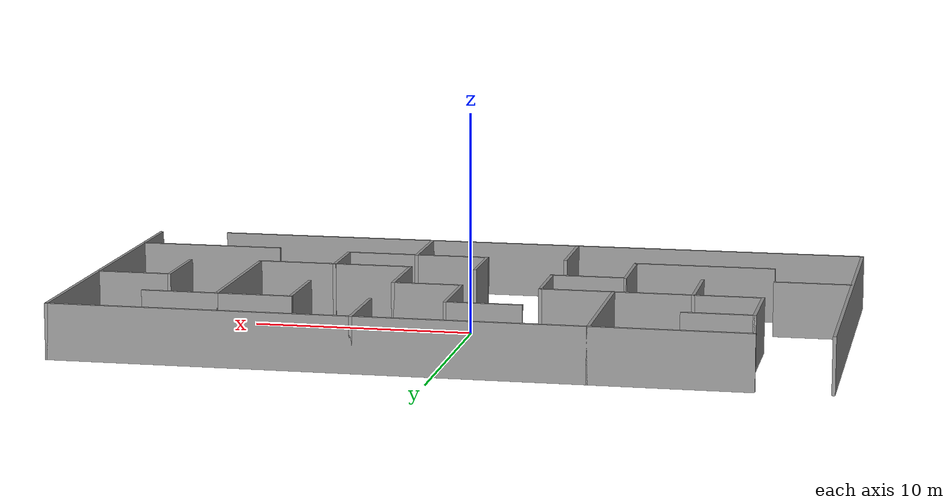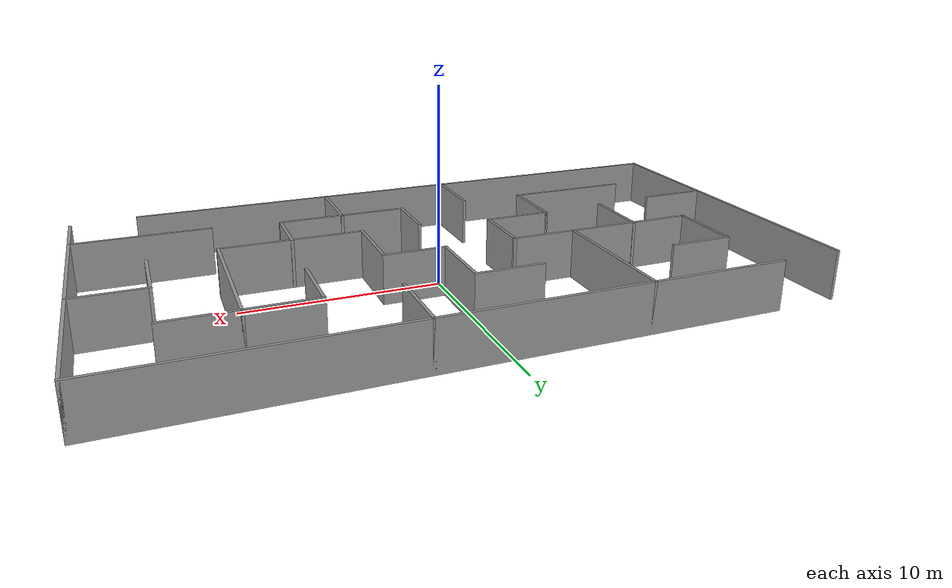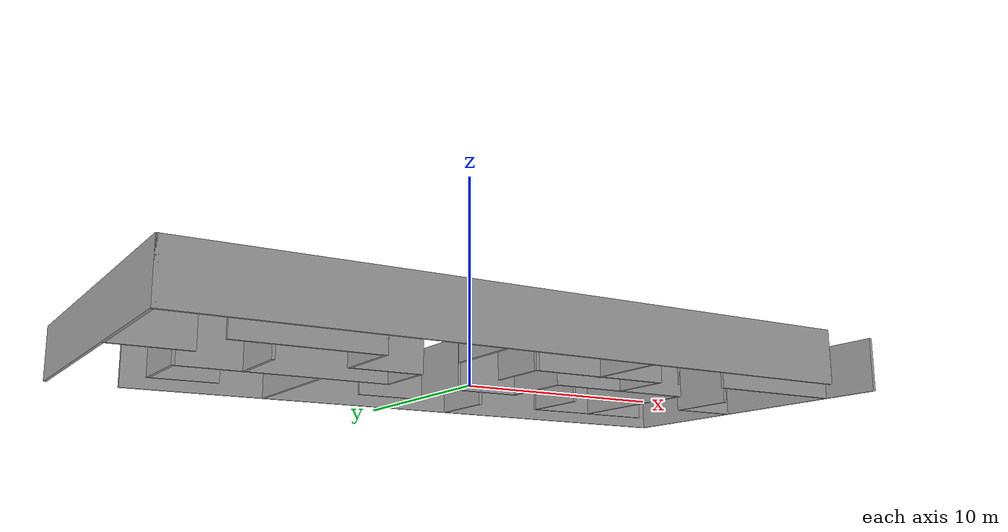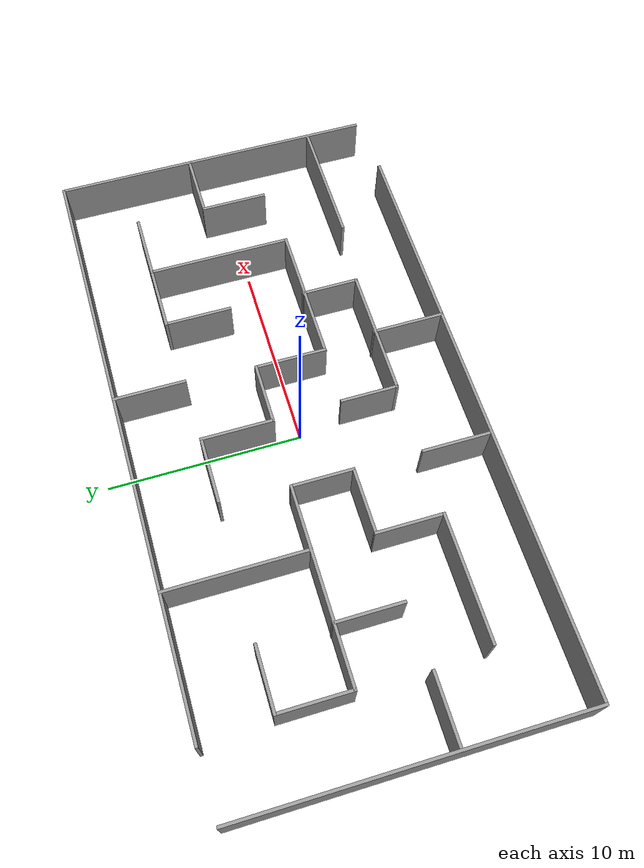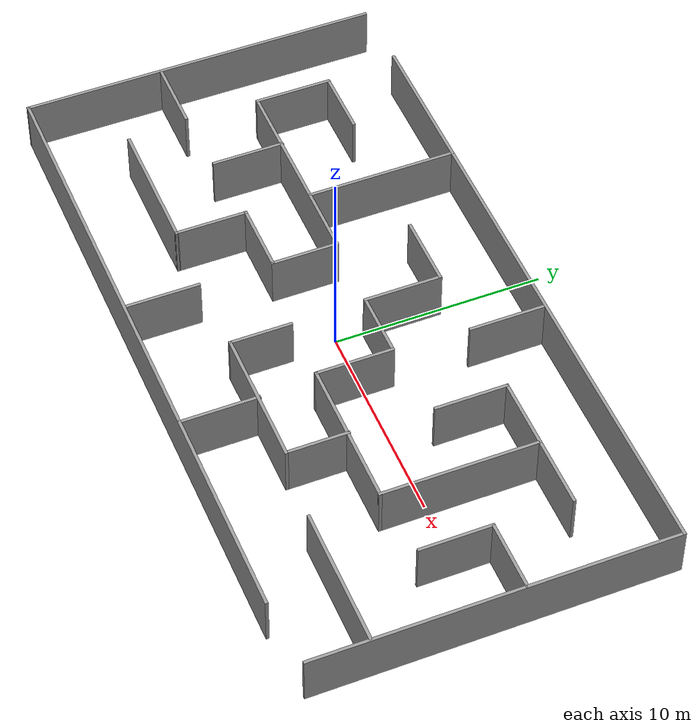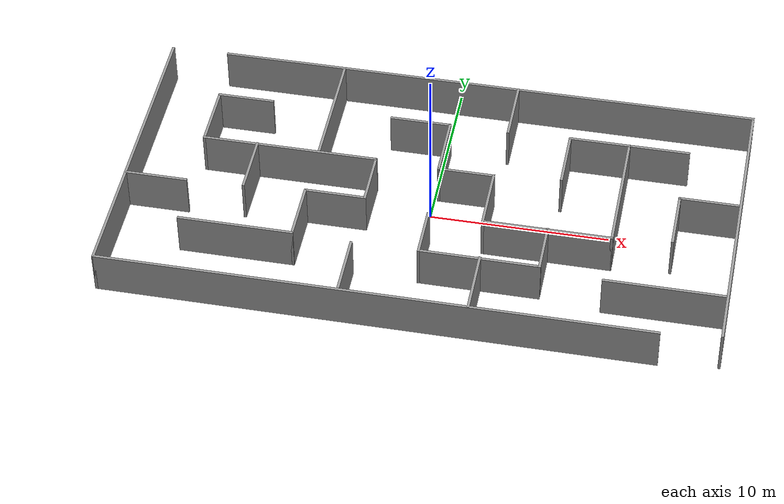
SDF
<?xml version='1.0'?>
<sdf version='1.7'>
  <model name='maze3'>
    <pose>0.067566 -0.037467 0 0 -0 0</pose>
    <link name='Wall_115'>
      <collision name='Wall_115_Collision'>
        <geometry>
          <box>
            <size>17.25 0.15 2.5</size>
          </box>
        </geometry>
        <pose>0 0 1.25 0 -0 0</pose>
      </collision>
      <visual name='Wall_115_Visual'>
        <pose>0 0 1.25 0 -0 0</pose>
        <geometry>
          <box>
            <size>17.25 0.15 2.5</size>
          </box>
        </geometry>
        <material>
          <script>
            <uri>file://media/materials/scripts/gazebo.material</uri>
            <name>Gazebo/Grey</name>
          </script>
          <ambient>1 1 1 1</ambient>
        </material>
        <meta>
          <layer>0</layer>
        </meta>
      </visual>
      <pose>-16.9493 -0.060341 0 0 -0 -1.5708</pose>
    </link>
    <link name='Wall_116'>
      <collision name='Wall_116_Collision'>
        <geometry>
          <box>
            <size>30.75 0.15 2.5</size>
          </box>
        </geometry>
        <pose>0 0 1.25 0 -0 0</pose>
      </collision>
      <visual name='Wall_116_Visual'>
        <pose>0 0 1.25 0 -0 0</pose>
        <geometry>
          <box>
            <size>30.75 0.15 2.5</size>
          </box>
        </geometry>
        <material>
          <script>
            <uri>file://media/materials/scripts/gazebo.material</uri>
            <name>Gazebo/Grey</name>
          </script>
          <ambient>1 1 1 1</ambient>
        </material>
        <meta>
          <layer>0</layer>
        </meta>
      </visual>
      <pose>-1.64931 -8.61034 0 0 -0 0</pose>
    </link>
    <link name='Wall_118'>
      <collision name='Wall_118_Collision'>
        <geometry>
          <box>
            <size>30.75 0.15 2.5</size>
          </box>
        </geometry>
        <pose>0 0 1.25 0 -0 0</pose>
      </collision>
      <visual name='Wall_118_Visual'>
        <pose>0 0 1.25 0 -0 0</pose>
        <geometry>
          <box>
            <size>30.75 0.15 2.5</size>
          </box>
        </geometry>
        <material>
          <script>
            <uri>file://media/materials/scripts/gazebo.material</uri>
            <name>Gazebo/Grey</name>
          </script>
          <ambient>1 1 1 1</ambient>
        </material>
        <meta>
          <layer>0</layer>
        </meta>
      </visual>
      <pose>1.64931 8.61034 0 0 -0 0</pose>
    </link>
    <link name='Wall_119'>
      <collision name='Wall_119_Collision'>
        <geometry>
          <box>
            <size>17 0.15 2.5</size>
          </box>
        </geometry>
        <pose>0 0 1.25 0 -0 0</pose>
      </collision>
      <visual name='Wall_119_Visual'>
        <pose>0 0 1.25 0 -0 0</pose>
        <geometry>
          <box>
            <size>17 0.15 2.5</size>
          </box>
        </geometry>
        <material>
          <script>
            <uri>file://media/materials/scripts/gazebo.material</uri>
            <name>Gazebo/Grey</name>
          </script>
          <ambient>1 1 1 1</ambient>
        </material>
        <meta>
          <layer>0</layer>
        </meta>
      </visual>
      <pose>16.9493 0.185341 0 0 -0 -1.5708</pose>
    </link>
    <link name='Wall_121'>
      <collision name='Wall_121_Collision'>
        <geometry>
          <box>
            <size>3.5 0.15 2.5</size>
          </box>
        </geometry>
        <pose>0 0 1.25 0 -0 0</pose>
      </collision>
      <visual name='Wall_121_Visual'>
        <pose>0 0 1.25 0 -0 0</pose>
        <geometry>
          <box>
            <size>3.5 0.15 2.5</size>
          </box>
        </geometry>
        <material>
          <script>
            <uri>file://media/materials/scripts/gazebo.material</uri>
            <name>Gazebo/Grey</name>
          </script>
          <ambient>1 1 1 1</ambient>
        </material>
        <meta>
          <layer>0</layer>
        </meta>
      </visual>
      <pose>-15.1939 -2.00963 0 0 -0 0</pose>
    </link>
    <link name='Wall_123'>
      <collision name='Wall_123_Collision'>
        <geometry>
          <box>
            <size>6.5 0.15 2.5</size>
          </box>
        </geometry>
        <pose>0 0 1.25 0 -0 0</pose>
      </collision>
      <visual name='Wall_123_Visual'>
        <pose>0 0 1.25 0 -0 0</pose>
        <geometry>
          <box>
            <size>6.5 0.15 2.5</size>
          </box>
        </geometry>
        <material>
          <script>
            <uri>file://media/materials/scripts/gazebo.material</uri>
            <name>Gazebo/Grey</name>
          </script>
          <ambient>1 1 1 1</ambient>
        </material>
        <meta>
          <layer>0</layer>
        </meta>
      </visual>
      <pose>-9.99296 -4.94621 0 0 -0 0</pose>
    </link>
    <link name='Wall_124'>
      <collision name='Wall_124_Collision'>
        <geometry>
          <box>
            <size>3.5 0.15 2.5</size>
          </box>
        </geometry>
        <pose>0 0 1.25 0 -0 0</pose>
      </collision>
      <visual name='Wall_124_Visual'>
        <pose>0 0 1.25 0 -0 0</pose>
        <geometry>
          <box>
            <size>3.5 0.15 2.5</size>
          </box>
        </geometry>
        <material>
          <script>
            <uri>file://media/materials/scripts/gazebo.material</uri>
            <name>Gazebo/Grey</name>
          </script>
          <ambient>1 1 1 1</ambient>
        </material>
        <meta>
          <layer>0</layer>
        </meta>
      </visual>
      <pose>-6.81796 -3.27121 0 0 -0 1.5708</pose>
    </link>
    <link name='Wall_125'>
      <collision name='Wall_125_Collision'>
        <geometry>
          <box>
            <size>3.5 0.15 2.5</size>
          </box>
        </geometry>
        <pose>0 0 1.25 0 -0 0</pose>
      </collision>
      <visual name='Wall_125_Visual'>
        <pose>0 0 1.25 0 -0 0</pose>
        <geometry>
          <box>
            <size>3.5 0.15 2.5</size>
          </box>
        </geometry>
        <material>
          <script>
            <uri>file://media/materials/scripts/gazebo.material</uri>
            <name>Gazebo/Grey</name>
          </script>
          <ambient>1 1 1 1</ambient>
        </material>
        <meta>
          <layer>0</layer>
        </meta>
      </visual>
      <pose>-5.14296 -1.59621 0 0 -0 0</pose>
    </link>
    <link name='Wall_126'>
      <collision name='Wall_126_Collision'>
        <geometry>
          <box>
            <size>3.25 0.15 2.5</size>
          </box>
        </geometry>
        <pose>0 0 1.25 0 -0 0</pose>
      </collision>
      <visual name='Wall_126_Visual'>
        <pose>0 0 1.25 0 -0 0</pose>
        <geometry>
          <box>
            <size>3.25 0.15 2.5</size>
          </box>
        </geometry>
        <material>
          <script>
            <uri>file://media/materials/scripts/gazebo.material</uri>
            <name>Gazebo/Grey</name>
          </script>
          <ambient>1 1 1 1</ambient>
        </material>
        <meta>
          <layer>0</layer>
        </meta>
      </visual>
      <pose>-3.46796 -0.046207 0 0 -0 1.5708</pose>
    </link>
    <link name='Wall_127'>
      <collision name='Wall_127_Collision'>
        <geometry>
          <box>
            <size>10 0.15 2.5</size>
          </box>
        </geometry>
        <pose>0 0 1.25 0 -0 0</pose>
      </collision>
      <visual name='Wall_127_Visual'>
        <pose>0 0 1.25 0 -0 0</pose>
        <geometry>
          <box>
            <size>10 0.15 2.5</size>
          </box>
        </geometry>
        <material>
          <script>
            <uri>file://media/materials/scripts/gazebo.material</uri>
            <name>Gazebo/Grey</name>
          </script>
          <ambient>1 1 1 1</ambient>
        </material>
        <meta>
          <layer>0</layer>
        </meta>
      </visual>
      <pose>-8.39296 1.50379 0 0 -0 3.14159</pose>
    </link>
    <link name='Wall_128'>
      <collision name='Wall_128_Collision'>
        <geometry>
          <box>
            <size>3.75 0.15 2.5</size>
          </box>
        </geometry>
        <pose>0 0 1.25 0 -0 0</pose>
      </collision>
      <visual name='Wall_128_Visual'>
        <pose>0 0 1.25 0 -0 0</pose>
        <geometry>
          <box>
            <size>3.75 0.15 2.5</size>
          </box>
        </geometry>
        <material>
          <script>
            <uri>file://media/materials/scripts/gazebo.material</uri>
            <name>Gazebo/Grey</name>
          </script>
          <ambient>1 1 1 1</ambient>
        </material>
        <meta>
          <layer>0</layer>
        </meta>
      </visual>
      <pose>-13.318 3.30379 0 0 -0 1.5708</pose>
    </link>
    <link name='Wall_129'>
      <collision name='Wall_129_Collision'>
        <geometry>
          <box>
            <size>3.25 0.15 2.5</size>
          </box>
        </geometry>
        <pose>0 0 1.25 0 -0 0</pose>
      </collision>
      <visual name='Wall_129_Visual'>
        <pose>0 0 1.25 0 -0 0</pose>
        <geometry>
          <box>
            <size>3.25 0.15 2.5</size>
          </box>
        </geometry>
        <material>
          <script>
            <uri>file://media/materials/scripts/gazebo.material</uri>
            <name>Gazebo/Grey</name>
          </script>
          <ambient>1 1 1 1</ambient>
        </material>
        <meta>
          <layer>0</layer>
        </meta>
      </visual>
      <pose>-11.768 5.10379 0 0 -0 0</pose>
    </link>
    <link name='Wall_131'>
      <collision name='Wall_131_Collision'>
        <geometry>
          <box>
            <size>3.5 0.15 2.5</size>
          </box>
        </geometry>
        <pose>0 0 1.25 0 -0 0</pose>
      </collision>
      <visual name='Wall_131_Visual'>
        <pose>0 0 1.25 0 -0 0</pose>
        <geometry>
          <box>
            <size>3.5 0.15 2.5</size>
          </box>
        </geometry>
        <material>
          <script>
            <uri>file://media/materials/scripts/gazebo.material</uri>
            <name>Gazebo/Grey</name>
          </script>
          <ambient>1 1 1 1</ambient>
        </material>
        <meta>
          <layer>0</layer>
        </meta>
      </visual>
      <pose>-10.2716 -0.144636 0 0 -0 -1.5708</pose>
    </link>
    <link name='Wall_133'>
      <collision name='Wall_133_Collision'>
        <geometry>
          <box>
            <size>7.25 0.15 2.5</size>
          </box>
        </geometry>
        <pose>0 0 1.25 0 -0 0</pose>
      </collision>
      <visual name='Wall_133_Visual'>
        <pose>0 0 1.25 0 -0 0</pose>
        <geometry>
          <box>
            <size>7.25 0.15 2.5</size>
          </box>
        </geometry>
        <material>
          <script>
            <uri>file://media/materials/scripts/gazebo.material</uri>
            <name>Gazebo/Grey</name>
          </script>
          <ambient>1 1 1 1</ambient>
        </material>
        <meta>
          <layer>0</layer>
        </meta>
      </visual>
      <pose>-6.73162 5.06034 0 0 -0 -1.5708</pose>
    </link>
    <link name='Wall_135'>
      <collision name='Wall_135_Collision'>
        <geometry>
          <box>
            <size>3.75 0.15 2.5</size>
          </box>
        </geometry>
        <pose>0 0 1.25 0 -0 0</pose>
      </collision>
      <visual name='Wall_135_Visual'>
        <pose>0 0 1.25 0 -0 0</pose>
        <geometry>
          <box>
            <size>3.75 0.15 2.5</size>
          </box>
        </geometry>
        <material>
          <script>
            <uri>file://media/materials/scripts/gazebo.material</uri>
            <name>Gazebo/Grey</name>
          </script>
          <ambient>1 1 1 1</ambient>
        </material>
        <meta>
          <layer>0</layer>
        </meta>
      </visual>
      <pose>3.44585 6.81034 0 0 -0 -1.5708</pose>
    </link>
    <link name='Wall_137'>
      <collision name='Wall_137_Collision'>
        <geometry>
          <box>
            <size>3.5 0.15 2.5</size>
          </box>
        </geometry>
        <pose>0 0 1.25 0 -0 0</pose>
      </collision>
      <visual name='Wall_137_Visual'>
        <pose>0 0 1.25 0 -0 0</pose>
        <geometry>
          <box>
            <size>3.5 0.15 2.5</size>
          </box>
        </geometry>
        <material>
          <script>
            <uri>file://media/materials/scripts/gazebo.material</uri>
            <name>Gazebo/Grey</name>
          </script>
          <ambient>1 1 1 1</ambient>
        </material>
        <meta>
          <layer>0</layer>
        </meta>
      </visual>
      <pose>-1.55686 4.9899 0 0 -0 0</pose>
    </link>
    <link name='Wall_138'>
      <collision name='Wall_138_Collision'>
        <geometry>
          <box>
            <size>3.75 0.15 2.5</size>
          </box>
        </geometry>
        <pose>0 0 1.25 0 -0 0</pose>
      </collision>
      <visual name='Wall_138_Visual'>
        <pose>0 0 1.25 0 -0 0</pose>
        <geometry>
          <box>
            <size>3.75 0.15 2.5</size>
          </box>
        </geometry>
        <material>
          <script>
            <uri>file://media/materials/scripts/gazebo.material</uri>
            <name>Gazebo/Grey</name>
          </script>
          <ambient>1 1 1 1</ambient>
        </material>
        <meta>
          <layer>0</layer>
        </meta>
      </visual>
      <pose>0.118143 3.1899 0 0 -0 -1.5708</pose>
    </link>
    <link name='Wall_139'>
      <collision name='Wall_139_Collision'>
        <geometry>
          <box>
            <size>3.25 0.15 2.5</size>
          </box>
        </geometry>
        <pose>0 0 1.25 0 -0 0</pose>
      </collision>
      <visual name='Wall_139_Visual'>
        <pose>0 0 1.25 0 -0 0</pose>
        <geometry>
          <box>
            <size>3.25 0.15 2.5</size>
          </box>
        </geometry>
        <material>
          <script>
            <uri>file://media/materials/scripts/gazebo.material</uri>
            <name>Gazebo/Grey</name>
          </script>
          <ambient>1 1 1 1</ambient>
        </material>
        <meta>
          <layer>0</layer>
        </meta>
      </visual>
      <pose>1.66814 1.3899 0 0 -0 0</pose>
    </link>
    <link name='Wall_140'>
      <collision name='Wall_140_Collision'>
        <geometry>
          <box>
            <size>3.75 0.15 2.5</size>
          </box>
        </geometry>
        <pose>0 0 1.25 0 -0 0</pose>
      </collision>
      <visual name='Wall_140_Visual'>
        <pose>0 0 1.25 0 -0 0</pose>
        <geometry>
          <box>
            <size>3.75 0.15 2.5</size>
          </box>
        </geometry>
        <material>
          <script>
            <uri>file://media/materials/scripts/gazebo.material</uri>
            <name>Gazebo/Grey</name>
          </script>
          <ambient>1 1 1 1</ambient>
        </material>
        <meta>
          <layer>0</layer>
        </meta>
      </visual>
      <pose>3.21814 -0.410102 0 0 -0 -1.5708</pose>
    </link>
    <link name='Wall_141'>
      <collision name='Wall_141_Collision'>
        <geometry>
          <box>
            <size>7.25 0.15 2.5</size>
          </box>
        </geometry>
        <pose>0 0 1.25 0 -0 0</pose>
      </collision>
      <visual name='Wall_141_Visual'>
        <pose>0 0 1.25 0 -0 0</pose>
        <geometry>
          <box>
            <size>7.25 0.15 2.5</size>
          </box>
        </geometry>
        <material>
          <script>
            <uri>file://media/materials/scripts/gazebo.material</uri>
            <name>Gazebo/Grey</name>
          </script>
          <ambient>1 1 1 1</ambient>
        </material>
        <meta>
          <layer>0</layer>
        </meta>
      </visual>
      <pose>6.76814 -2.2101 0 0 -0 0</pose>
    </link>
    <link name='Wall_142'>
      <collision name='Wall_142_Collision'>
        <geometry>
          <box>
            <size>7.5 0.15 2.5</size>
          </box>
        </geometry>
        <pose>0 0 1.25 0 -0 0</pose>
      </collision>
      <visual name='Wall_142_Visual'>
        <pose>0 0 1.25 0 -0 0</pose>
        <geometry>
          <box>
            <size>7.5 0.15 2.5</size>
          </box>
        </geometry>
        <material>
          <script>
            <uri>file://media/materials/scripts/gazebo.material</uri>
            <name>Gazebo/Grey</name>
          </script>
          <ambient>1 1 1 1</ambient>
        </material>
        <meta>
          <layer>0</layer>
        </meta>
      </visual>
      <pose>10.3181 1.4649 0 0 -0 1.5708</pose>
    </link>
    <link name='Wall_143'>
      <collision name='Wall_143_Collision'>
        <geometry>
          <box>
            <size>3.5 0.15 2.5</size>
          </box>
        </geometry>
        <pose>0 0 1.25 0 -0 0</pose>
      </collision>
      <visual name='Wall_143_Visual'>
        <pose>0 0 1.25 0 -0 0</pose>
        <geometry>
          <box>
            <size>3.5 0.15 2.5</size>
          </box>
        </geometry>
        <material>
          <script>
            <uri>file://media/materials/scripts/gazebo.material</uri>
            <name>Gazebo/Grey</name>
          </script>
          <ambient>1 1 1 1</ambient>
        </material>
        <meta>
          <layer>0</layer>
        </meta>
      </visual>
      <pose>8.64314 5.1399 0 0 -0 3.14159</pose>
    </link>
    <link name='Wall_144'>
      <collision name='Wall_144_Collision'>
        <geometry>
          <box>
            <size>3.5 0.15 2.5</size>
          </box>
        </geometry>
        <pose>0 0 1.25 0 -0 0</pose>
      </collision>
      <visual name='Wall_144_Visual'>
        <pose>0 0 1.25 0 -0 0</pose>
        <geometry>
          <box>
            <size>3.5 0.15 2.5</size>
          </box>
        </geometry>
        <material>
          <script>
            <uri>file://media/materials/scripts/gazebo.material</uri>
            <name>Gazebo/Grey</name>
          </script>
          <ambient>1 1 1 1</ambient>
        </material>
        <meta>
          <layer>0</layer>
        </meta>
      </visual>
      <pose>6.96814 3.4649 0 0 -0 -1.5708</pose>
    </link>
    <link name='Wall_146'>
      <collision name='Wall_146_Collision'>
        <geometry>
          <box>
            <size>3.5 0.15 2.5</size>
          </box>
        </geometry>
        <pose>0 0 1.25 0 -0 0</pose>
      </collision>
      <visual name='Wall_146_Visual'>
        <pose>0 0 1.25 0 -0 0</pose>
        <geometry>
          <box>
            <size>3.5 0.15 2.5</size>
          </box>
        </geometry>
        <material>
          <script>
            <uri>file://media/materials/scripts/gazebo.material</uri>
            <name>Gazebo/Grey</name>
          </script>
          <ambient>1 1 1 1</ambient>
        </material>
        <meta>
          <layer>0</layer>
        </meta>
      </visual>
      <pose>11.9931 5.1399 0 0 -0 0</pose>
    </link>
    <link name='Wall_148'>
      <collision name='Wall_148_Collision'>
        <geometry>
          <box>
            <size>3.5 0.15 2.5</size>
          </box>
        </geometry>
        <pose>0 0 1.25 0 -0 0</pose>
      </collision>
      <visual name='Wall_148_Visual'>
        <pose>0 0 1.25 0 -0 0</pose>
        <geometry>
          <box>
            <size>3.5 0.15 2.5</size>
          </box>
        </geometry>
        <material>
          <script>
            <uri>file://media/materials/scripts/gazebo.material</uri>
            <name>Gazebo/Grey</name>
          </script>
          <ambient>1 1 1 1</ambient>
        </material>
        <meta>
          <layer>0</layer>
        </meta>
      </visual>
      <pose>-3.51345 -6.78212 0 0 -0 -1.5708</pose>
    </link>
    <link name='Wall_150'>
      <collision name='Wall_150_Collision'>
        <geometry>
          <box>
            <size>6.75 0.15 2.5</size>
          </box>
        </geometry>
        <pose>0 0 1.25 0 -0 0</pose>
      </collision>
      <visual name='Wall_150_Visual'>
        <pose>0 0 1.25 0 -0 0</pose>
        <geometry>
          <box>
            <size>6.75 0.15 2.5</size>
          </box>
        </geometry>
        <material>
          <script>
            <uri>file://media/materials/scripts/gazebo.material</uri>
            <name>Gazebo/Grey</name>
          </script>
          <ambient>1 1 1 1</ambient>
        </material>
        <meta>
          <layer>0</layer>
        </meta>
      </visual>
      <pose>13.5845 -5.3887 0 0 -0 0</pose>
    </link>
    <link name='Wall_152'>
      <collision name='Wall_152_Collision'>
        <geometry>
          <box>
            <size>3.5 0.15 2.5</size>
          </box>
        </geometry>
        <pose>0 0 1.25 0 -0 0</pose>
      </collision>
      <visual name='Wall_152_Visual'>
        <pose>0 0 1.25 0 -0 0</pose>
        <geometry>
          <box>
            <size>3.5 0.15 2.5</size>
          </box>
        </geometry>
        <material>
          <script>
            <uri>file://media/materials/scripts/gazebo.material</uri>
            <name>Gazebo/Grey</name>
          </script>
          <ambient>1 1 1 1</ambient>
        </material>
        <meta>
          <layer>0</layer>
        </meta>
      </visual>
      <pose>13.5831 -0.173717 0 0 -0 1.5708</pose>
    </link>
    <link name='Wall_153'>
      <collision name='Wall_153_Collision'>
        <geometry>
          <box>
            <size>3.5 0.15 2.5</size>
          </box>
        </geometry>
        <pose>0 0 1.25 0 -0 0</pose>
      </collision>
      <visual name='Wall_153_Visual'>
        <pose>0 0 1.25 0 -0 0</pose>
        <geometry>
          <box>
            <size>3.5 0.15 2.5</size>
          </box>
        </geometry>
        <material>
          <script>
            <uri>file://media/materials/scripts/gazebo.material</uri>
            <name>Gazebo/Grey</name>
          </script>
          <ambient>1 1 1 1</ambient>
        </material>
        <meta>
          <layer>0</layer>
        </meta>
      </visual>
      <pose>15.2581 1.50128 0 0 -0 0</pose>
    </link>
    <link name='Wall_155'>
      <collision name='Wall_155_Collision'>
        <geometry>
          <box>
            <size>3 0.15 2.5</size>
          </box>
        </geometry>
        <pose>0 0 1.25 0 -0 0</pose>
      </collision>
      <visual name='Wall_155_Visual'>
        <pose>0 0 1.25 0 -0 0</pose>
        <geometry>
          <box>
            <size>3 0.15 2.5</size>
          </box>
        </geometry>
        <material>
          <script>
            <uri>file://media/materials/scripts/gazebo.material</uri>
            <name>Gazebo/Grey</name>
          </script>
          <ambient>1 1 1 1</ambient>
        </material>
        <meta>
          <layer>0</layer>
        </meta>
      </visual>
      <pose>6.7847 -3.59553 0 0 -0 -1.5708</pose>
    </link>
    <link name='Wall_156'>
      <collision name='Wall_156_Collision'>
        <geometry>
          <box>
            <size>6.75 0.15 2.5</size>
          </box>
        </geometry>
        <pose>0 0 1.25 0 -0 0</pose>
      </collision>
      <visual name='Wall_156_Visual'>
        <pose>0 0 1.25 0 -0 0</pose>
        <geometry>
          <box>
            <size>6.75 0.15 2.5</size>
          </box>
        </geometry>
        <material>
          <script>
            <uri>file://media/materials/scripts/gazebo.material</uri>
            <name>Gazebo/Grey</name>
          </script>
          <ambient>1 1 1 1</ambient>
        </material>
        <meta>
          <layer>0</layer>
        </meta>
      </visual>
      <pose>3.4847 -5.02053 0 0 -0 3.14159</pose>
    </link>
    <link name='Wall_157'>
      <collision name='Wall_157_Collision'>
        <geometry>
          <box>
            <size>3 0.15 2.5</size>
          </box>
        </geometry>
        <pose>0 0 1.25 0 -0 0</pose>
      </collision>
      <visual name='Wall_157_Visual'>
        <pose>0 0 1.25 0 -0 0</pose>
        <geometry>
          <box>
            <size>3 0.15 2.5</size>
          </box>
        </geometry>
        <material>
          <script>
            <uri>file://media/materials/scripts/gazebo.material</uri>
            <name>Gazebo/Grey</name>
          </script>
          <ambient>1 1 1 1</ambient>
        </material>
        <meta>
          <layer>0</layer>
        </meta>
      </visual>
      <pose>0.184702 -3.59553 0 0 -0 1.5708</pose>
    </link>
    <link name='Wall_159'>
      <collision name='Wall_159_Collision'>
        <geometry>
          <box>
            <size>3.75 0.15 2.5</size>
          </box>
        </geometry>
        <pose>0 0 1.25 0 -0 0</pose>
      </collision>
      <visual name='Wall_159_Visual'>
        <pose>0 0 1.25 0 -0 0</pose>
        <geometry>
          <box>
            <size>3.75 0.15 2.5</size>
          </box>
        </geometry>
        <material>
          <script>
            <uri>file://media/materials/scripts/gazebo.material</uri>
            <name>Gazebo/Grey</name>
          </script>
          <ambient>1 1 1 1</ambient>
        </material>
        <meta>
          <layer>0</layer>
        </meta>
      </visual>
      <pose>3.5263 -6.76665 0 0 -0 1.5708</pose>
    </link>
    <static>1</static>
  </model>
</sdf>
